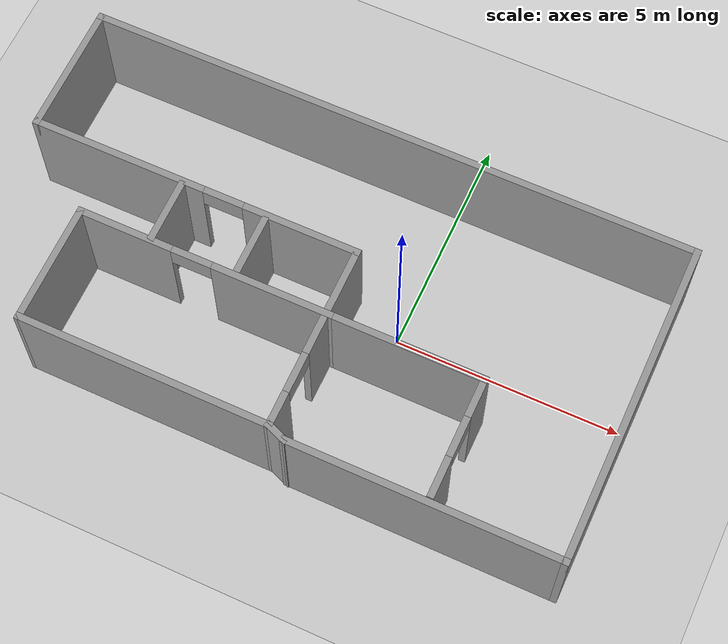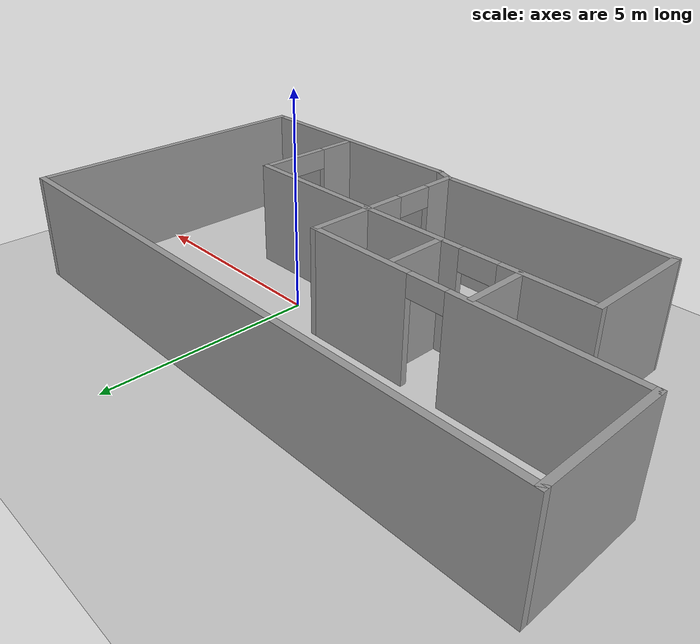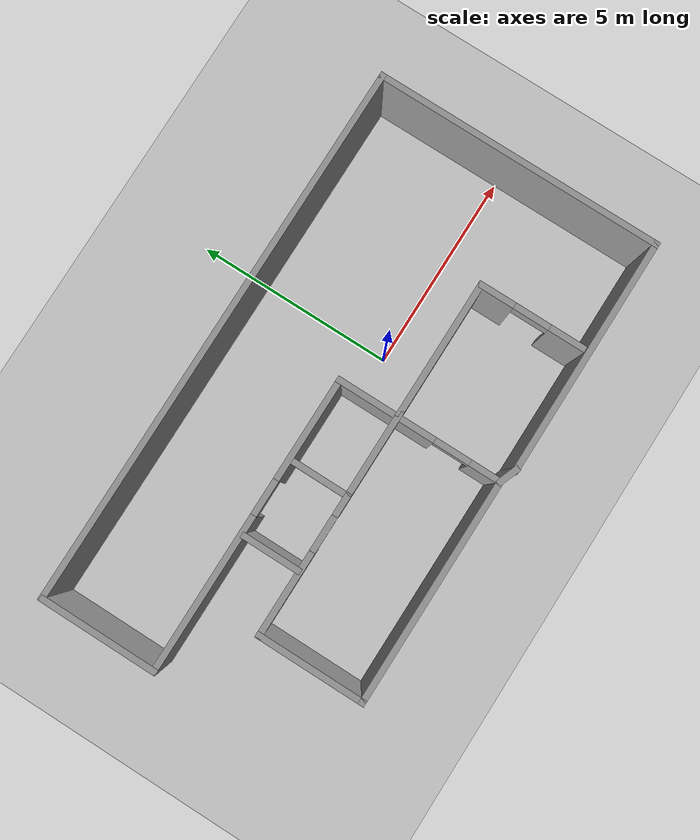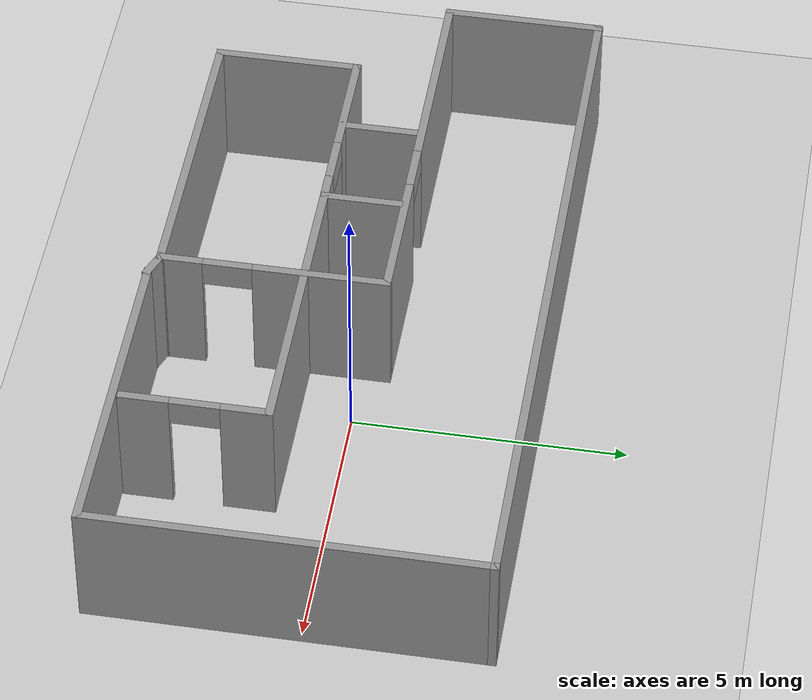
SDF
<sdf version="1.6">
 <world name="default">
  <light name="sun" type="directional">
   <pose>0 0 10 0 -0 0</pose>
   <diffuse>0.8 0.8 0.8 1</diffuse>
   <specular>0.2 0.2 0.2 1</specular>
   <attenuation>
    <range>1000</range>
    <constant>0.9</constant>
    <linear>0.01</linear>
    <quadratic>0.001</quadratic>
   </attenuation>
   <direction>-0.5 0.1 -0.9</direction>
  </light>
  <model name="ground_plane">
   <static>1</static>
   <link name="link">
    <collision name="collision">
     <geometry><plane><normal>0 0 1</normal><size>100 100</size></plane></geometry>
     <surface>
      <contact><collide_bitmask>65535</collide_bitmask></contact>
      <friction><ode><mu>100</mu><mu2>50</mu2></ode></friction>
     </surface>
    </collision>
    <visual name="visual">
     <cast_shadows>0</cast_shadows>
     <geometry><plane><normal>0 0 1</normal><size>100 100</size></plane></geometry>
     <material>
      <script><uri>file://media/materials/scripts/gazebo.material</uri><name>Gazebo/Grey</name></script>
     </material>
    </visual>
   </link>
  </model>
  <gravity>0 0 -9.8</gravity>
  <magnetic_field>6e-06 2.3e-05 -4.2e-05</magnetic_field>
  <atmosphere type="adiabatic"/>
  <physics name="default_physics" default="0" type="ode">
   <max_step_size>0.001</max_step_size>
   <real_time_factor>1</real_time_factor>
   <real_time_update_rate>1000</real_time_update_rate>
  </physics>
  <scene><ambient>0.4 0.4 0.4 1</ambient><background>0.7 0.7 0.7 1</background><shadows>1</shadows></scene>
  <spherical_coordinates>
   <surface_model>EARTH_WGS84</surface_model>
   <latitude_deg>0</latitude_deg>
   <longitude_deg>0</longitude_deg>
   <elevation>0</elevation>
   <heading_deg>0</heading_deg>
  </spherical_coordinates>
  <model name="Please">
   <pose>-1.70002 -0.246672 0 0 -0 0</pose>
   <link name="Wall_12">
    <pose>0.55 -1.33922 0 0 0 -1.5708</pose>
    <visual name="Wall_12_Visual_0">
     <pose>-0.870785 0 1.25 0 -0 0</pose>
     <geometry><box><size>2.50843 0.15 2.5</size></box></geometry>
     <material>
      <script><uri>file://media/materials/scripts/gazebo.material</uri><name>Gazebo/Grey</name></script>
      <ambient>1 1 1 1</ambient>
     </material>
     <meta><layer>0</layer></meta>
    </visual>
    <collision name="Wall_12_Collision_0">
     <geometry><box><size>2.50843 0.15 2.5</size></box></geometry>
     <pose>-0.870785 0 1.25 0 -0 0</pose>
    </collision>
    <visual name="Wall_12_Visual_1">
     <pose>1.70422 0 1.25 0 -0 0</pose>
     <geometry><box><size>0.84157 0.15 2.5</size></box></geometry>
     <material>
      <script><uri>file://media/materials/scripts/gazebo.material</uri><name>Gazebo/Grey</name></script>
      <ambient>1 1 1 1</ambient>
     </material>
     <meta><layer>0</layer></meta>
    </visual>
    <collision name="Wall_12_Collision_1">
     <geometry><box><size>0.84157 0.15 2.5</size></box></geometry>
     <pose>1.70422 0 1.25 0 -0 0</pose>
    </collision>
    <visual name="Wall_12_Visual_2">
     <pose>0.83343 0 2.25 0 -0 0</pose>
     <geometry><box><size>0.9 0.15 0.5</size></box></geometry>
     <material>
      <script><uri>file://media/materials/scripts/gazebo.material</uri><name>Gazebo/Grey</name></script>
      <ambient>1 1 1 1</ambient>
     </material>
     <meta><layer>0</layer></meta>
    </visual>
    <collision name="Wall_12_Collision_2">
     <geometry><box><size>0.9 0.15 0.5</size></box></geometry>
     <pose>0.83343 0 2.25 0 -0 0</pose>
    </collision>
   </link>
   <link name="Wall_13">
    <collision name="Wall_13_Collision">
     <geometry><box><size>0.5772 0.15 2.5</size></box></geometry>
     <pose>0 0 1.25 0 -0 0</pose>
    </collision>
    <visual name="Wall_13_Visual">
     <pose>0 0 1.25 0 -0 0</pose>
     <geometry><box><size>0.5772 0.15 2.5</size></box></geometry>
     <material>
      <script><uri>file://media/materials/scripts/gazebo.material</uri><name>Gazebo/Grey</name></script>
      <ambient>1 1 1 1</ambient>
     </material>
     <meta><layer>0</layer></meta>
    </visual>
    <pose>0.75 -3.46422 0 0 0 -0.358771</pose>
   </link>
   <link name="Wall_15">
    <collision name="Wall_15_Collision">
     <geometry><box><size>3.5 0.15 2.5</size></box></geometry>
     <pose>0 0 1.25 0 -0 0</pose>
    </collision>
    <visual name="Wall_15_Visual">
     <pose>0 0 1.25 0 -0 0</pose>
     <geometry><box><size>3.5 0.15 2.5</size></box></geometry>
     <material>
      <script><uri>file://media/materials/scripts/gazebo.material</uri><name>Gazebo/Grey</name></script>
      <ambient>1 1 1 1</ambient>
     </material>
     <meta><layer>0</layer></meta>
    </visual>
    <pose>2.30189 -0.773446 0 0 -0 0</pose>
   </link>
   <link name="Wall_16">
    <pose>3.97689 -2.07345 0 0 0 -1.5708</pose>
    <visual name="Wall_16_Visual_0">
     <pose>-0.906623 0 1.25 0 -0 0</pose>
     <geometry><box><size>0.936755 0.15 2.5</size></box></geometry>
     <material>
      <script><uri>file://media/materials/scripts/gazebo.material</uri><name>Gazebo/Grey</name></script>
      <ambient>1 1 1 1</ambient>
     </material>
     <meta><layer>0</layer></meta>
    </visual>
    <collision name="Wall_16_Collision_0">
     <geometry><box><size>0.936755 0.15 2.5</size></box></geometry>
     <pose>-0.906623 0 1.25 0 -0 0</pose>
    </collision>
    <visual name="Wall_16_Visual_1">
     <pose>0.918377 0 1.25 0 -0 0</pose>
     <geometry><box><size>0.913245 0.15 2.5</size></box></geometry>
     <material>
      <script><uri>file://media/materials/scripts/gazebo.material</uri><name>Gazebo/Grey</name></script>
      <ambient>1 1 1 1</ambient>
     </material>
     <meta><layer>0</layer></meta>
    </visual>
    <collision name="Wall_16_Collision_1">
     <geometry><box><size>0.913245 0.15 2.5</size></box></geometry>
     <pose>0.918377 0 1.25 0 -0 0</pose>
    </collision>
    <visual name="Wall_16_Visual_2">
     <pose>0.011755 0 2.25 0 -0 0</pose>
     <geometry><box><size>0.9 0.15 0.5</size></box></geometry>
     <material>
      <script><uri>file://media/materials/scripts/gazebo.material</uri><name>Gazebo/Grey</name></script>
      <ambient>1 1 1 1</ambient>
     </material>
     <meta><layer>0</layer></meta>
    </visual>
    <collision name="Wall_16_Collision_2">
     <geometry><box><size>0.9 0.15 0.5</size></box></geometry>
     <pose>0.011755 0 2.25 0 -0 0</pose>
    </collision>
   </link>
   <link name="Wall_18">
    <pose>-2.17311 -0.773446 0 0 -0 3.14159</pose>
    <visual name="Wall_18_Visual_0">
     <pose>-1.53212 0 1.25 0 -0 0</pose>
     <geometry><box><size>2.68576 0.15 2.5</size></box></geometry>
     <material>
      <script><uri>file://media/materials/scripts/gazebo.material</uri><name>Gazebo/Grey</name></script>
      <ambient>1 1 1 1</ambient>
     </material>
     <meta><layer>0</layer></meta>
    </visual>
    <collision name="Wall_18_Collision_0">
     <geometry><box><size>2.68576 0.15 2.5</size></box></geometry>
     <pose>-1.53212 0 1.25 0 -0 0</pose>
    </collision>
    <visual name="Wall_18_Visual_1">
     <pose>1.79288 0 1.25 0 -0 0</pose>
     <geometry><box><size>2.16424 0.15 2.5</size></box></geometry>
     <material>
      <script><uri>file://media/materials/scripts/gazebo.material</uri><name>Gazebo/Grey</name></script>
      <ambient>1 1 1 1</ambient>
     </material>
     <meta><layer>0</layer></meta>
    </visual>
    <collision name="Wall_18_Collision_1">
     <geometry><box><size>2.16424 0.15 2.5</size></box></geometry>
     <pose>1.79288 0 1.25 0 -0 0</pose>
    </collision>
    <visual name="Wall_18_Visual_2">
     <pose>0.260761 0 2.25 0 -0 0</pose>
     <geometry><box><size>0.9 0.15 0.5</size></box></geometry>
     <material>
      <script><uri>file://media/materials/scripts/gazebo.material</uri><name>Gazebo/Grey</name></script>
      <ambient>1 1 1 1</ambient>
     </material>
     <meta><layer>0</layer></meta>
    </visual>
    <collision name="Wall_18_Collision_2">
     <geometry><box><size>0.9 0.15 0.5</size></box></geometry>
     <pose>0.260761 0 2.25 0 -0 0</pose>
    </collision>
   </link>
   <link name="Wall_2">
    <collision name="Wall_2_Collision">
     <geometry><box><size>6 0.15 2.5</size></box></geometry>
     <pose>0 0 1.25 0 -0 0</pose>
    </collision>
    <visual name="Wall_2_Visual">
     <pose>0 0 1.25 0 -0 0</pose>
     <geometry><box><size>6 0.15 2.5</size></box></geometry>
     <material>
      <script><uri>file://media/materials/scripts/gazebo.material</uri><name>Gazebo/Grey</name></script>
      <ambient>1 1 1 1</ambient>
     </material>
     <meta><layer>0</layer></meta>
    </visual>
    <pose>3.875 -3.53922 0 0 -0 0</pose>
   </link>
   <link name="Wall_21">
    <collision name="Wall_21_Collision">
     <geometry><box><size>2.75 0.15 2.5</size></box></geometry>
     <pose>0 0 1.25 0 -0 0</pose>
    </collision>
    <visual name="Wall_21_Visual">
     <pose>0 0 1.25 0 -0 0</pose>
     <geometry><box><size>2.75 0.15 2.5</size></box></geometry>
     <material>
      <script><uri>file://media/materials/scripts/gazebo.material</uri><name>Gazebo/Grey</name></script>
      <ambient>1 1 1 1</ambient>
     </material>
     <meta><layer>0</layer></meta>
    </visual>
    <pose>-4.97311 -2.07345 0 0 0 -1.5708</pose>
   </link>
   <link name="Wall_22">
    <collision name="Wall_22_Collision">
     <geometry><box><size>5.67313 0.15 2.5</size></box></geometry>
     <pose>0 0 1.25 0 -0 0</pose>
    </collision>
    <visual name="Wall_22_Visual">
     <pose>0 0 1.25 0 -0 0</pose>
     <geometry><box><size>5.67313 0.15 2.5</size></box></geometry>
     <material>
      <script><uri>file://media/materials/scripts/gazebo.material</uri><name>Gazebo/Grey</name></script>
      <ambient>1 1 1 1</ambient>
     </material>
     <meta><layer>0</layer></meta>
    </visual>
    <pose>-2.21155 -3.38133 0 0 0 -0.002856</pose>
   </link>
   <link name="Wall_24">
    <collision name="Wall_24_Collision">
     <geometry><box><size>1.5 0.15 2.5</size></box></geometry>
     <pose>0 0 1.25 0 -0 0</pose>
    </collision>
    <visual name="Wall_24_Visual">
     <pose>0 0 1.25 0 -0 0</pose>
     <geometry><box><size>1.5 0.15 2.5</size></box></geometry>
     <material>
      <script><uri>file://media/materials/scripts/gazebo.material</uri><name>Gazebo/Grey</name></script>
      <ambient>1 1 1 1</ambient>
     </material>
     <meta><layer>0</layer></meta>
    </visual>
    <pose>-3.37833 -0.049241 0 0 0 -1.5708</pose>
   </link>
   <link name="Wall_26">
    <collision name="Wall_26_Collision">
     <geometry><box><size>1.5 0.15 2.5</size></box></geometry>
     <pose>0 0 1.25 0 -0 0</pose>
    </collision>
    <visual name="Wall_26_Visual">
     <pose>0 0 1.25 0 -0 0</pose>
     <geometry><box><size>1.5 0.15 2.5</size></box></geometry>
     <material>
      <script><uri>file://media/materials/scripts/gazebo.material</uri><name>Gazebo/Grey</name></script>
      <ambient>1 1 1 1</ambient>
     </material>
     <meta><layer>0</layer></meta>
    </visual>
    <pose>-1.47191 -0.084221 0 0 0 -1.5708</pose>
   </link>
   <link name="Wall_6">
    <collision name="Wall_6_Collision">
     <geometry><box><size>7.25 0.15 2.5</size></box></geometry>
     <pose>0 0 1.25 0 -0 0</pose>
    </collision>
    <visual name="Wall_6_Visual">
     <pose>0 0 1.25 0 -0 0</pose>
     <geometry><box><size>7.25 0.15 2.5</size></box></geometry>
     <material>
      <script><uri>file://media/materials/scripts/gazebo.material</uri><name>Gazebo/Grey</name></script>
      <ambient>1 1 1 1</ambient>
     </material>
     <meta><layer>0</layer></meta>
    </visual>
    <pose>6.8 0.010779 0 0 -0 1.5708</pose>
   </link>
   <link name="Wall_7">
    <collision name="Wall_7_Collision">
     <geometry><box><size>13.75 0.15 2.5</size></box></geometry>
     <pose>0 0 1.25 0 -0 0</pose>
    </collision>
    <visual name="Wall_7_Visual">
     <pose>0 0 1.25 0 -0 0</pose>
     <geometry><box><size>13.75 0.15 2.5</size></box></geometry>
     <material>
      <script><uri>file://media/materials/scripts/gazebo.material</uri><name>Gazebo/Grey</name></script>
      <ambient>1 1 1 1</ambient>
     </material>
     <meta><layer>0</layer></meta>
    </visual>
    <pose>0 3.56078 0 0 -0 3.14159</pose>
   </link>
   <link name="Wall_8">
    <collision name="Wall_8_Collision">
     <geometry><box><size>3 0.15 2.5</size></box></geometry>
     <pose>0 0 1.25 0 -0 0</pose>
    </collision>
    <visual name="Wall_8_Visual">
     <pose>0 0 1.25 0 -0 0</pose>
     <geometry><box><size>3 0.15 2.5</size></box></geometry>
     <material>
      <script><uri>file://media/materials/scripts/gazebo.material</uri><name>Gazebo/Grey</name></script>
      <ambient>1 1 1 1</ambient>
     </material>
     <meta><layer>0</layer></meta>
    </visual>
    <pose>-6.8 2.13578 0 0 0 -1.5708</pose>
   </link>
   <link name="Wall_9">
    <pose>-3.125 0.710779 0 0 -0 0</pose>
    <visual name="Wall_9_Visual_0">
     <pose>-1.76318 0 1.25 0 -0 0</pose>
     <geometry><box><size>3.97364 0.15 2.5</size></box></geometry>
     <material>
      <script><uri>file://media/materials/scripts/gazebo.material</uri><name>Gazebo/Grey</name></script>
      <ambient>1 1 1 1</ambient>
     </material>
     <meta><layer>0</layer></meta>
    </visual>
    <collision name="Wall_9_Collision_0">
     <geometry><box><size>3.97364 0.15 2.5</size></box></geometry>
     <pose>-1.76318 0 1.25 0 -0 0</pose>
    </collision>
    <visual name="Wall_9_Visual_1">
     <pose>2.43682 0 1.25 0 -0 0</pose>
     <geometry><box><size>2.62636 0.15 2.5</size></box></geometry>
     <material>
      <script><uri>file://media/materials/scripts/gazebo.material</uri><name>Gazebo/Grey</name></script>
      <ambient>1 1 1 1</ambient>
     </material>
     <meta><layer>0</layer></meta>
    </visual>
    <collision name="Wall_9_Collision_1">
     <geometry><box><size>2.62636 0.15 2.5</size></box></geometry>
     <pose>2.43682 0 1.25 0 -0 0</pose>
    </collision>
    <visual name="Wall_9_Visual_2">
     <pose>0.673643 0 2.25 0 -0 0</pose>
     <geometry><box><size>0.9 0.15 0.5</size></box></geometry>
     <material>
      <script><uri>file://media/materials/scripts/gazebo.material</uri><name>Gazebo/Grey</name></script>
      <ambient>1 1 1 1</ambient>
     </material>
     <meta><layer>0</layer></meta>
    </visual>
    <collision name="Wall_9_Collision_2">
     <geometry><box><size>0.9 0.15 0.5</size></box></geometry>
     <pose>0.673643 0 2.25 0 -0 0</pose>
    </collision>
   </link>
   <static>1</static>
  </model>
 </world>
</sdf>
